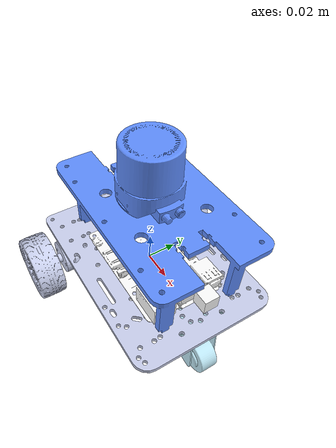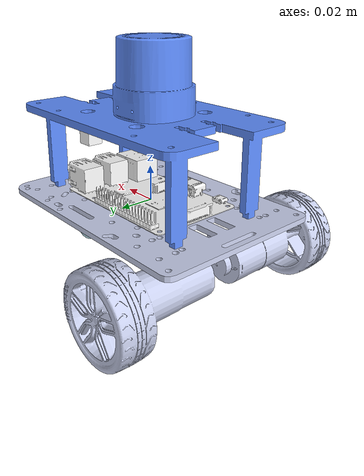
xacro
<?xml version="1.0" encoding="utf-8"?>
<robot
  name="robot_description"  xmlns:xacro="http://ros.org/wiki/xacro">
  <xacro:include filename="$(find robot_description)/urdf/robot_description.gazebo.xacro" />
  <link name="base_footprint">
  </link>

  <joint name="base_joint" type="fixed">
    <parent link="base_footprint"/>
    <child link="base_link"/>
    <origin xyz="0.0 0.0 0.0" rpy="0 0 0"/>
  </joint>

  <link
    name="base_link">
    <inertial>
      <origin
        xyz="2.6246E-14 2.3582E-14 -0.0015"
        rpy="0 0 0" />
      <mass
        value="0.039002" />
      <inertia
        ixx="3.2716E-05"
        ixy="-2.1462E-13"
        ixz="-2.6892E-20"
        iyy="6.7767E-05"
        iyz="1.2263E-20"
        izz="0.00010042" />
    </inertial>
    <visual>
      <origin
        xyz="0 0 0"
        rpy="0 0 0" />
      <geometry>
        <mesh
          filename="package://robot_description/meshes/base_link.STL" />
      </geometry>
      <material
        name="">
        <color
          rgba="0.79216 0.81961 0.93333 1" />
      </material>
    </visual>
    <collision>
      <origin
        xyz="0 0 0"
        rpy="0 0 0" />
      <geometry>
        <mesh
          filename="package://robot_description/meshes/base_link.STL" />
      </geometry>
    </collision>
  </link>
  <link
    name="wheel_left_Link">
    <inertial>
      <origin
        xyz="3.2081E-06 -0.027055 0.00013509"
        rpy="0 0 0" />
      <mass
        value="0.035371" />
      <inertia
        ixx="7.2964E-06"
        ixy="-1.2651E-09"
        ixz="-6.992E-11"
        iyy="7.5055E-06"
        iyz="1.0517E-07"
        izz="7.2459E-06" />
    </inertial>
    <visual>
      <origin
        xyz="0 0 0"
        rpy="0 0 0" />
      <geometry>
        <mesh
          filename="package://robot_description/meshes/wheel_left_Link.STL" />
      </geometry>
      <material
        name="">
        <color
          rgba="0.79216 0.81961 0.93333 1" />
      </material>
    </visual>
    <collision>
      <origin
        xyz="0 0 0"
        rpy="0 0 0" />
      <geometry>
        <mesh
          filename="package://robot_description/meshes/wheel_left_Link.STL" />
      </geometry>
    </collision>
  </link>
  <joint
    name="wheel_left_joint"
    type="continuous">
    <origin
      xyz="-0.048791 0.0715 -0.023"
      rpy="0 0 0" />
    <parent
      link="base_link" />
    <child
      link="wheel_left_Link" />
    <axis
      xyz="0 1 0" />
  </joint>
  <link
    name="wheel_right_Link">
    <inertial>
      <origin
        xyz="-3.2081E-06 0.027055 0.00013509"
        rpy="0 0 0" />
      <mass
        value="0.035371" />
      <inertia
        ixx="7.2964E-06"
        ixy="-1.2651E-09"
        ixz="6.992E-11"
        iyy="7.5055E-06"
        iyz="-1.0517E-07"
        izz="7.2459E-06" />
    </inertial>
    <visual>
      <origin
        xyz="0 0 0"
        rpy="0 0 0" />
      <geometry>
        <mesh
          filename="package://robot_description/meshes/wheel_right_Link.STL" />
      </geometry>
      <material
        name="">
        <color
          rgba="0.79216 0.81961 0.93333 1" />
      </material>
    </visual>
    <collision>
      <origin
        xyz="0 0 0"
        rpy="0 0 0" />
      <geometry>
        <mesh
          filename="package://robot_description/meshes/wheel_right_Link.STL" />
      </geometry>
    </collision>
  </link>
  <joint
    name="wheel_right_joint"
    type="continuous">
    <origin
      xyz="-0.048791 -0.0715 -0.023"
      rpy="0 0 0" />
    <parent
      link="base_link" />
    <child
      link="wheel_right_Link" />
    <axis
      xyz="0 1 0" />
  </joint>
  <link
    name="wheel_universal_Link">
    <inertial>
      <origin
        xyz="-0.0049043 0.0072459 0.0084569"
        rpy="0 0 0" />
      <mass
        value="0.010932" />
      <inertia
        ixx="1.9746E-06"
        ixy="1.5756E-10"
        ixz="7.6294E-07"
        iyy="2.4635E-06"
        iyz="-2.4689E-10"
        izz="1.3438E-06" />
    </inertial>
    <visual>
      <origin
        xyz="0 0 0"
        rpy="0 0 0" />
      <geometry>
        <mesh
          filename="package://robot_description/meshes/wheel_universal_Link.STL" />
      </geometry>
      <material
        name="">
        <color
          rgba="0.74118 0.90196 0.95686 1" />
      </material>
    </visual>
    <collision>
      <origin
        xyz="0 0 0"
        rpy="0 0 0" />
      <geometry>
        <mesh
          filename="package://robot_description/meshes/wheel_universal_Link.STL" />
      </geometry>
    </collision>
  </link>
  <joint
    name="wheel_universal_joint"
    type="fixed">
    <origin
      xyz="0.063633 -0.0072487 -0.034"
      rpy="0 0 0" />
    <parent
      link="base_link" />
    <child
      link="wheel_universal_Link" />
    <axis
      xyz="0 0 0" />
  </joint>
  <link
    name="laser_Link">
    <inertial>
      <origin
        xyz="-0.0030189 -0.00020139 -0.019649"
        rpy="0 0 0" />
      <mass
        value="0.094023" />
      <inertia
        ixx="3.4259E-05"
        ixy="-1.2348E-09"
        ixz="-2.1308E-07"
        iyy="5.7727E-05"
        iyz="-8.9097E-10"
        izz="7.5176E-05" />
    </inertial>
    <visual>
      <origin
        xyz="0 0 0"
        rpy="0 0 0" />
      <geometry>
        <mesh
          filename="package://robot_description/meshes/laser_Link.STL" />
      </geometry>
      <material
        name="">
        <color
          rgba="0.37255 0.55686 1 1" />
      </material>
    </visual>
    <collision>
      <origin
        xyz="0 0 0"
        rpy="0 0 0" />
      <geometry>
        <mesh
          filename="package://robot_description/meshes/laser_Link.STL" />
      </geometry>
    </collision>
  </link>
  <joint
    name="laser_joint"
    type="fixed">
    <origin
      xyz="-0.0064435 0.002216 0.078664"
      rpy="0 0 3.1416" />
    <parent
      link="base_link" />
    <child
      link="laser_Link" />
    <axis
      xyz="0 0 0" />
  </joint>
  <link
    name="imu_Link">
    <inertial>
      <origin
        xyz="-0.021463 0.017572 -0.010408"
        rpy="0 0 0" />
      <mass
        value="0.017226" />
      <inertia
        ixx="2.2162E-06"
        ixy="3.6168E-10"
        ixz="-1.8429E-08"
        iyy="4.9944E-06"
        iyz="3.6637E-11"
        izz="7.034E-06" />
    </inertial>
    <visual>
      <origin
        xyz="0 0 0"
        rpy="0 0 0" />
      <geometry>
        <mesh
          filename="package://robot_description/meshes/imu_Link.STL" />
      </geometry>
      <material
        name="">
        <color
          rgba="1 1 1 1" />
      </material>
    </visual>
    <collision>
      <origin
        xyz="0 0 0"
        rpy="0 0 0" />
      <geometry>
        <mesh
          filename="package://robot_description/meshes/imu_Link.STL" />
      </geometry>
    </collision>
  </link>
  <joint
    name="imu_joint"
    type="fixed">
    <origin
      xyz="0.037033 -0.018447 0.013909"
      rpy="0 0 0" />
    <parent
      link="base_link" />
    <child
      link="imu_Link" />
    <axis
      xyz="0 0 0" />
  </joint>

    <!-- camera -->
  <link name="camera_link">
    <visual>
      <geometry>
        <box size="0.01 0.01 0.01"/>
      </geometry>
      <material name="white">
          <color rgba="1 1 1 1"/>
      </material>
    </visual>
  </link>

  <joint name="camera_joint" type="fixed">
    <parent link="base_link"/>
    <child link="camera_link"/>
    <origin xyz="0.06 0 0.025"/>
  </joint>
</robot>
